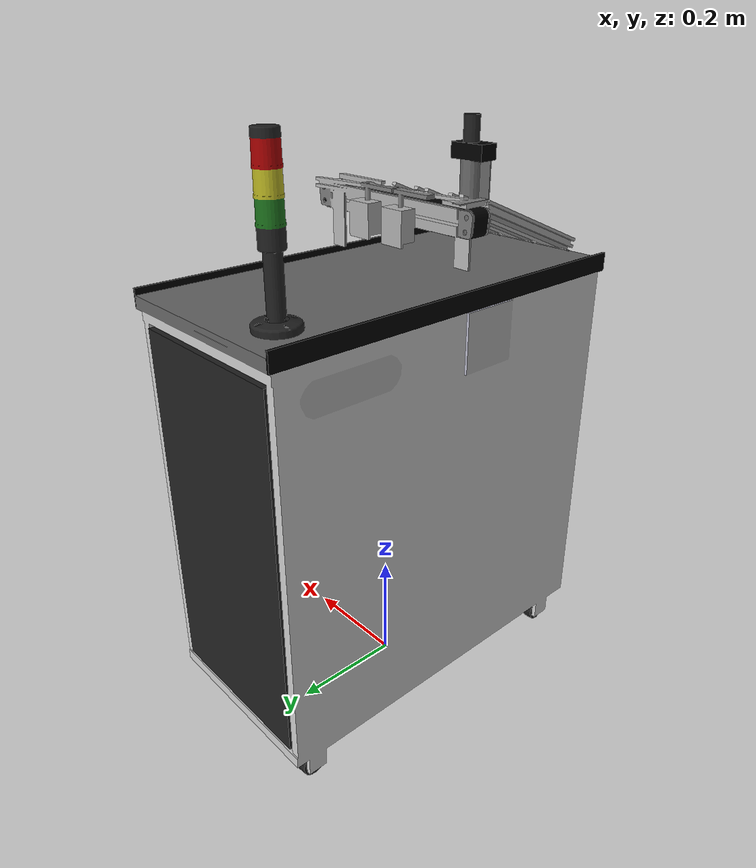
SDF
<?xml version="1.0" ?>
<sdf version="1.4">
  <model name="mps_delivery">
    <static>false</static>
    <link name="body">
      <pose>0 0 0.445 0 0 0</pose>
      <gravity>true</gravity>
      <inertial>
        <mass>30</mass>
        <inertia>
	  <!-- according to http://en.wikipedia.org/wiki/List_of_moments_of_inertia for a solid box of width: 0.35, height:0.7, depth: 0.7, mass m=30 -->
          <ixx>2.45</ixx>
          <ixy>0.0</ixy>
          <ixz>0.0</ixz>
          <iyy>1.53125</iyy>
          <iyz>0.0</iyz>
          <izz>1.53125</izz>
        </inertia>
      </inertial>
      <visual name="body-visual">
      	<pose>.172 .35 -0.445 0 0 0</pose>
        <geometry>
          <mesh>
            <uri>model://mps_delivery/meshes/mps_delivery.dae</uri>
          </mesh>
        </geometry>
        <cast_shadows>false</cast_shadows>
      </visual>
      <collision name="body-collision">
        <geometry>
		    <box>
		      <size>.35 .70 .91</size>
		    </box>
        </geometry>

      </collision>
    </link>
  </model>
</sdf>
